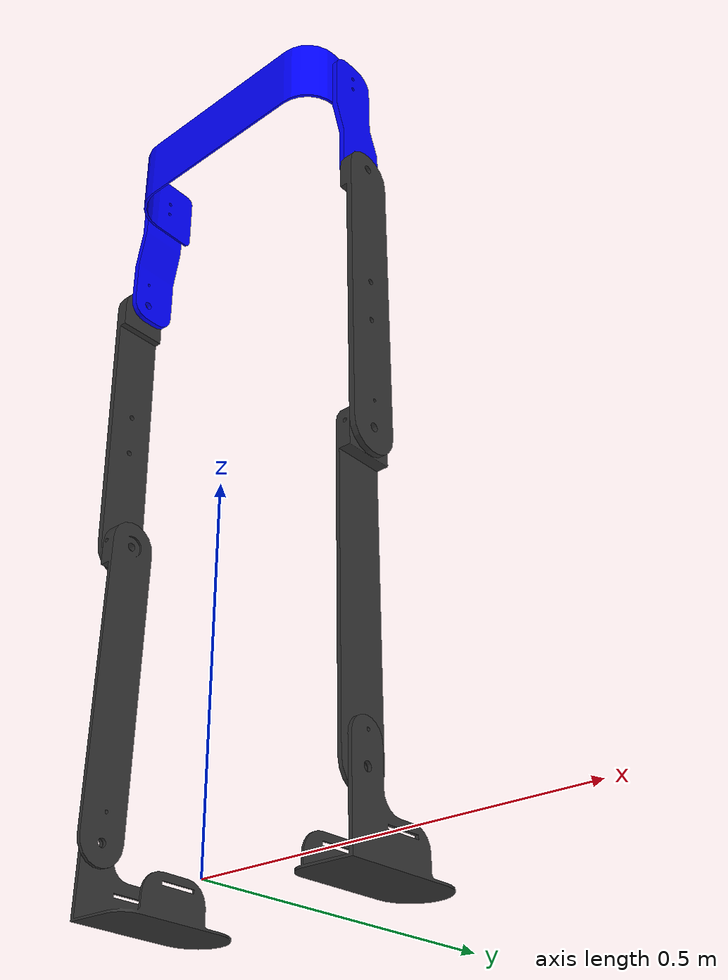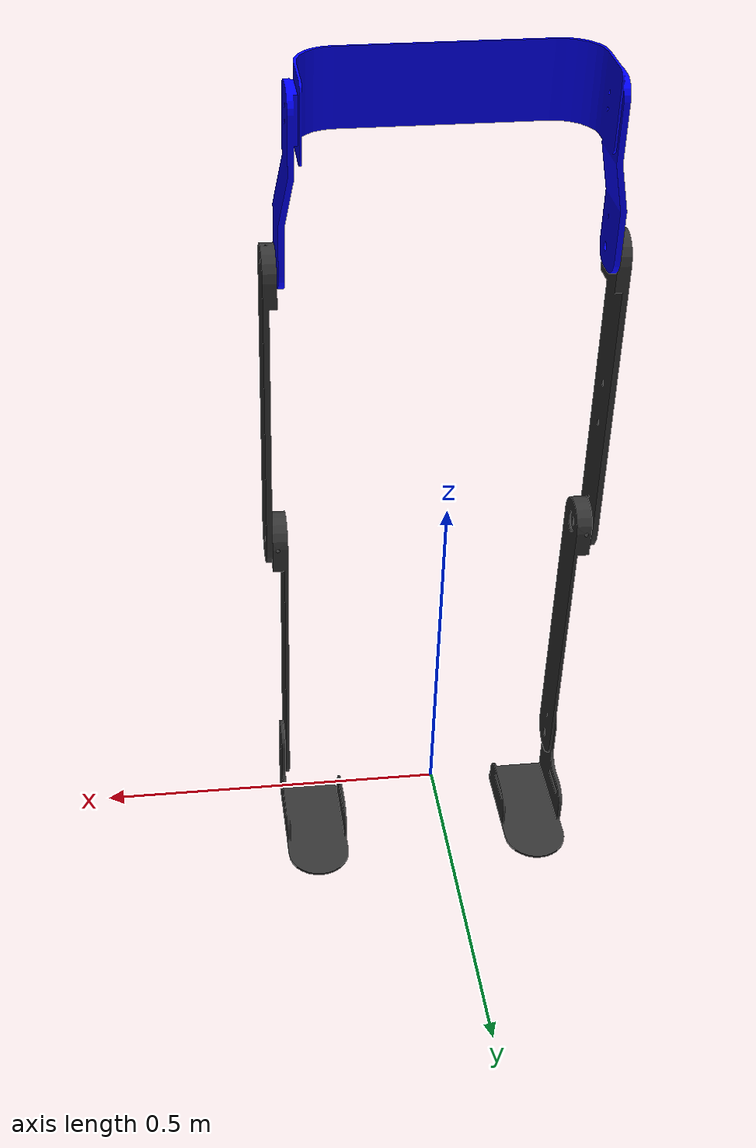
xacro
<robot xmlns:xacro="http://www.ros.org/wiki/xacro" name="lle">
 xmlns:controller="http://playerstage.sourceforge.net/gazebo/xmlschema/#controller"

<xacro:include filename="$(find lle_description)/urdf/materials.xacro"/>
<xacro:include filename="$(find lle_description)/urdf/lle.gazebo"/>

<link name="world"/>
<joint name="joint_base" type="fixed">
    <parent link="world"/>
    <child link="base_link"/>
</joint>

<link name="base_link">
          <visual>
              <origin xyz="0.193 -0.26 0.845" rpy="0 0 3.14"/>
              <geometry>
              <mesh
          filename="package://lle_description/meshes/base_link.STL" />
              </geometry>
              <material name="blue">
              <color rgba="0 0 1 1"/>
              </material>
          </visual>
      <collision>
        <origin xyz="0.193 -0.26 0.845" rpy="0 0 3.14"/>
        <geometry>
         <mesh
          filename="package://lle_description/meshes/base_link.STL" />
          </geometry>
</collision>
<inertial>
   <mass
        value="0.478425130329681" />
      <inertia
        ixx="0.00301717973628494"
        ixy="-3.18755438710738E-17"
        ixz="-6.24500451351651E-17"
        iyy="0.0176625083227497"
        iyz="-0.000444787144430361"
        izz="0.015853003043962" />
</inertial>
</link>

<!-- Right femur-->
  <link name="right_femur">
        <visual>
          <origin xyz="-0.025 0 0.00" rpy="3.14 1.57 0"/>
          <geometry>
            <mesh
          filename="package://lle_description/meshes/right_femur.STL" />
          </geometry>
<material name="darkgray">
<color rgba=".2 .2 .2 1"/>
</material>
        </visual>
<collision>
              <origin xyz="-0.025 0 0.00" rpy="3.14 1.57 0"/>
              <geometry>
                 <mesh
          filename="package://lle_description/meshes/right_femur.STL" />
          </geometry>
</collision>
<inertial>
              <mass
        value="0.29439" />
      <inertia
      ixx="0.0058564"
        ixy="6.4283E-05"
        ixz="-5.9435E-08"
        iyy="0.0057442"
        iyz="4.0889E-10"
        izz="0.00012141" />
</inertial>
    </link>

<joint name="j_hip_r" type="revolute">
<parent link="base_link"/>
<child link="right_femur"/>
<origin xyz="0.26 0 0.885" rpy="0 0 0"/>
<axis xyz="1 0 0"/>
 <limit effort="10" velocity="0.5" lower="-2.5" upper="2.5" />

</joint>

<!-- Right Leg-->
  <link name="right_leg">
        <visual>
          <origin xyz="-0.045 0 0.0" rpy="1.57 0 1.57"/>
          <geometry>
           <mesh
          filename="package://lle_description/meshes/right_leg.STL" />
          </geometry>
<material name="darkgray">
<color rgba=".2 .2 .2 1"/>
</material>
        </visual>
<collision>
              <origin xyz="-.045 0 0.0" rpy="1.57 0 1.57"/>
              <geometry>
                <mesh
          filename="package://lle_description/meshes/right_leg.STL" />
          </geometry>
</collision>
<inertial>
            <mass
        value="0.21595" />
      <inertia
        ixx="0.0044098"
        ixy="6.0023E-08"
        ixz="6.8343E-10"
        iyy="0.0043362"
        iyz="-9.425E-05"
        izz="8.6947E-05" />
</inertial>
    </link>

<joint name="j_knee_r" type="revolute">
<parent link="right_femur"/>
<child link="right_leg"/>
<origin xyz="0.02 0 -0.41" rpy="0 0 0"/>
<axis xyz="1 0 0"/>
 <limit effort="10" velocity="0.5" lower="-2.5" upper="2.5" />
</joint>

<link name="right_foot">
	<visual>
	<origin xyz="0.02 0.00 0" rpy="1.57 0 -1.57"/>
	<geometry>
	<mesh
          filename="package://lle_description/meshes/right_foot.STL" />
	</geometry>
	<material name="darkgray">
	<color rgba=".2 .2 .2 1"/>
	</material>
	</visual>
	<collision>
	<origin xyz="0.02 0.00 0" rpy="1.57 0 -1.57"/>
	<geometry>
	<mesh
          filename="package://lle_description/meshes/right_foot.STL" />
	</geometry>
	</collision>
	<inertial>
	<mass
        value="0.11504" />
      <inertia
        ixx="0.00029867"
        ixy="-0.00010337"
        ixz="5.7733E-05"
        iyy="0.00039778"
        iyz="6.4408E-05"
        izz="0.00044294" />
	</inertial>
</link>
<joint name="j_foot_r" type="revolute">
	<parent link="right_leg"/>
	<child link="right_foot"/>
	<origin xyz="-0.065 0 -0.403" rpy="0 0 0"/>
 	<limit effort="10" velocity="0.5" lower="-1" upper="1" />
	<axis xyz="1 0 0"/>
</joint>

<!-- Left Leg-->

<!-- Left femur-->
<link name="left_femur">
      	 <visual>
     	 <origin xyz="0.494 0 0.0" rpy="3.14 1.57 0"/>
 	<geometry>
     	  <mesh
          filename="package://lle_description/meshes/left_femur.STL" />
    	 </geometry>
	<material name="darkgray">
	<color rgba=".2 .2 .2 1"/>
	</material>
        </visual>
	<collision>
        <origin xyz="0.494 0 0.0" rpy="3.14 1.57 0"/>
        <geometry>
        <mesh
          filename="package://lle_description/meshes/left_femur.STL" />
        </geometry>
	</collision>
	<inertial>
	<mass
        value="0.29439" />
        <inertia
       ixx="0.0058564"
        ixy="-5.9435E-08"
        ixz="6.4283E-05"
        iyy="0.0057442"
        iyz="4.0889E-10"
        izz="0.00012141" />
	</inertial>
</link>

<joint name="j_hip_l" type="revolute">
<parent link="base_link"/>
<child link="left_femur"/>
<origin xyz="-0.26 0 0.885" rpy="-0.02 0 0"/>
<axis xyz="1 0 0"/>
 <limit effort="10" velocity="0.5" lower="-2.5" upper="2.5" />

</joint>

<link name="left_leg">
	<visual>
	<origin xyz="0.0 0.00 0.00" rpy="1.57 0 -1.57"/>
	<geometry>
	<mesh
          filename="package://lle_description/meshes/left_leg.STL" />
	</geometry>
	<material name="darkgray">
	<color rgba=".2 .2 .2 1"/>
	</material>
	</visual>
	<collision>
	<origin xyz="0.0 0.0 0.0" rpy="1.57 0 -1.57"/>
	<geometry>
	<mesh
          filename="package://lle_description/meshes/left_leg.STL" />
	</geometry>
	</collision>
	<inertial>
	<mass
        value="0.21595" />
      <inertia
        ixx="0.0044098"
        ixy="6.0023E-08"
        ixz="6.8343E-10"
        iyy="0.0043362"
        iyz="-9.425E-05"
        izz="8.6947E-05" />
	</inertial>
</link>

<joint name="j_knee_l" type="revolute">
	<parent link="left_femur"/>
	<child link="left_leg"/>
	<origin xyz="0.075 0.015 -0.409" rpy="0 0 0"/>
	<axis xyz="1 0 0"/>
 	<limit effort="30" velocity="0.5" lower="-2.5" upper="2.5" />
</joint>

<link name="left_foot">
        <visual>
        <origin xyz="0.0 0.00 0" rpy="1.57 0 1.57"/>
        <geometry>
        <mesh
          filename="package://lle_description/meshes/left_foot.STL" />
        </geometry>
	<material name="darkgray">
	<color rgba=".2 .2 .2 1"/>
	</material>
        </visual>
	<collision>
	<origin xyz="0.0 0.00 0" rpy="1.57 0 1.57"/>
	<geometry>
	<mesh
          filename="package://lle_description/meshes/left_foot.STL" />
	</geometry>
	</collision>
	<inertial>
	 <mass
        value="0.11504" />
      <inertia
      ixx="0.00029867"
        ixy="-0.00010337"
        ixz="5.7733E-05"
        iyy="0.00044294"
        iyz="6.4408E-05"
        izz="0.00039778" />
	</inertial>
</link>

<joint name="j_foot_l" type="revolute">
<parent link="left_leg"/>
<child link="left_foot"/>
<origin xyz="0 0 -0.403" rpy="0 0 0"/>
 <limit effort="10" velocity="0.5" lower="-1" upper="1" />
<axis xyz="1 0 0"/>
</joint>

<transmission name="tran1">
    <type>transmission_interface/SimpleTransmission</type>
    <joint name="j_hip_r">
      <hardwareInterface>EffortJointInterface</hardwareInterface>
    </joint>
    <actuator name="motor1">
      <hardwareInterface>EffortJointInterface</hardwareInterface>
      <mechanicalReduction>1</mechanicalReduction>
    </actuator>
  </transmission>

  <transmission name="tran2">
    <type>transmission_interface/SimpleTransmission</type>
    <joint name="j_hip_l">
      <hardwareInterface>EffortJointInterface</hardwareInterface>
    </joint>
    <actuator name="motor2">
      <hardwareInterface>EffortJointInterface</hardwareInterface>
      <mechanicalReduction>1</mechanicalReduction>
    </actuator>
  </transmission>

<transmission name="tran3">
    <type>transmission_interface/SimpleTransmission</type>
    <joint name="j_knee_r">
      <hardwareInterface>EffortJointInterface</hardwareInterface>
    </joint>
    <actuator name="motor3">
      <hardwareInterface>EffortJointInterface</hardwareInterface>
      <mechanicalReduction>1</mechanicalReduction>
    </actuator>
  </transmission>

  <transmission name="tran4">
    <type>transmission_interface/SimpleTransmission</type>
    <joint name="j_knee_l">
      <hardwareInterface>EffortJointInterface</hardwareInterface>
    </joint>
    <actuator name="motor4">
      <hardwareInterface>EffortJointInterface</hardwareInterface>
      <mechanicalReduction>1</mechanicalReduction>
    </actuator>
  </transmission>

<transmission name="tran5">
    <type>transmission_interface/SimpleTransmission</type>
    <joint name="j_foot_l">
      <hardwareInterface>EffortJointInterface</hardwareInterface>
    </joint>
    <actuator name="motor5">
      <hardwareInterface>EffortJointInterface</hardwareInterface>
      <mechanicalReduction>1</mechanicalReduction>
    </actuator>
</transmission>
<transmission name="tran6">
    <type>transmission_interface/SimpleTransmission</type>
    <joint name="j_foot_r">
      <hardwareInterface>EffortJointInterface</hardwareInterface>
    </joint>
    <actuator name="motor6">
      <hardwareInterface>EffortJointInterface</hardwareInterface>
      <mechanicalReduction>1</mechanicalReduction>
    </actuator>
</transmission>
</robot>

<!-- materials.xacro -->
<robot>

  <material name="black">
    <color rgba="0.0 0.0 0.0 1.0"/>
  </material>

  <material name="blue">
    <color rgba="0.0 0.0 0.8 1.0"/>
  </material>

  <material name="green">
    <color rgba="0.0 1.0 0.0 1.0"/>
  </material>

  <material name="grey">
    <color rgba="0.2 0.2 0.2 1.0"/>
  </material>

  <material name="orange">
    <color rgba="${255/255} ${108/255} ${10/255} 1.0"/>
  </material>

  <material name="brown">
    <color rgba="${222/255} ${207/255} ${195/255} 1.0"/>
  </material>

  <material name="red">
    <color rgba="0.8 0.0 0.0 1.0"/>
  </material>

  <material name="white">
    <color rgba="1.0 1.0 1.0 1.0"/>
  </material>

<material name="purpule">
    <color rgba="0 0 1 0 1"/>
  </material>

</robot>
